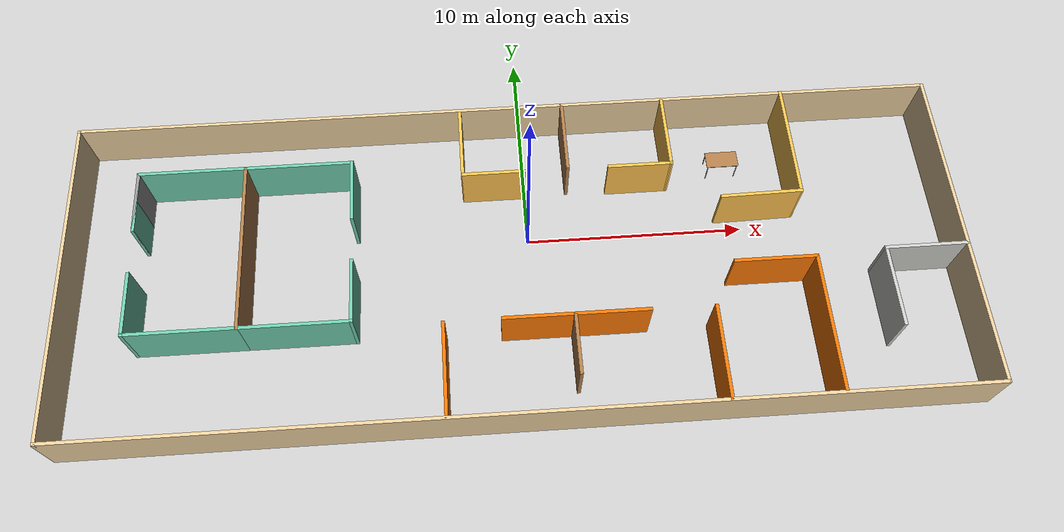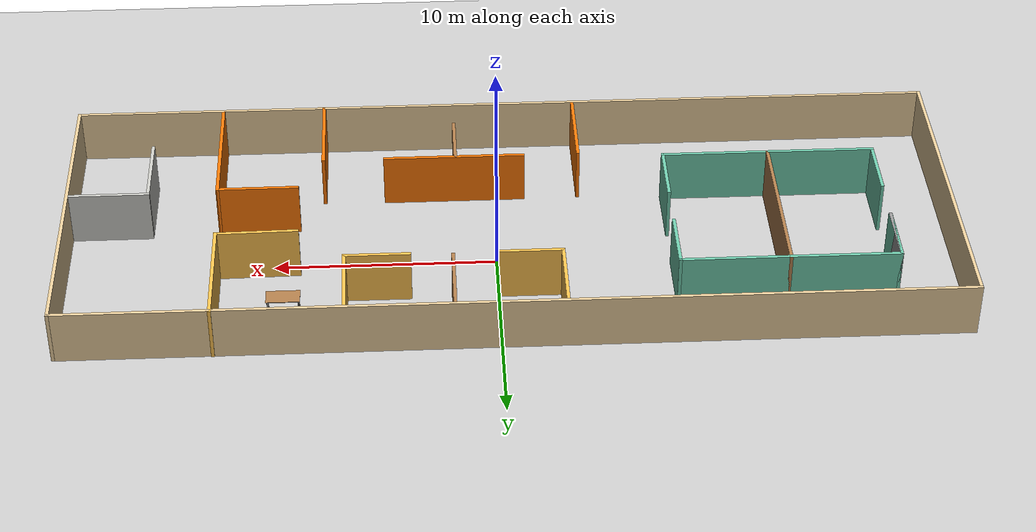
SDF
<sdf version="1.6">
 <world name="building">
  <model name="ground_plane">
   <static>1</static>
   <link name="link">
    <collision name="collision">
     <geometry><plane><normal>0 0 1</normal><size>100 100</size></plane></geometry>
     <surface><friction><ode><mu>100</mu><mu2>50</mu2></ode></friction></surface>
    </collision>
    <visual name="visual">
     <cast_shadows>0</cast_shadows>
     <geometry><plane><normal>0 0 1</normal><size>100 100</size></plane></geometry>
     <material>
      <script><uri>file://media/materials/scripts/gazebo.material</uri><name>Gazebo/Grey</name></script>
     </material>
    </visual>
   </link>
  </model>
  <model name="mybuilding">
   <pose>-0.6451 -1.51651 0 0 -0 0</pose>
   <link name="Wall_0">
    <collision name="Wall_0_Collision">
     <geometry><box><size>15 0.15 2.5</size></box></geometry>
     <pose>0 0 1.25 0 -0 0</pose>
    </collision>
    <visual name="Wall_0_Visual">
     <pose>0 0 1.25 0 -0 0</pose>
     <geometry><box><size>15 0.15 2.5</size></box></geometry>
     <material>
      <script><uri>file://media/materials/scripts/gazebo.material</uri><name>Gazebo/Grey</name></script>
      <ambient>0.921569 0.807843 0.615686 1</ambient>
     </material>
     <meta><layer>0</layer></meta>
    </visual>
    <pose>-19.925 -0.011199 0 0 0 -1.5708</pose>
   </link>
   <link name="Wall_1">
    <collision name="Wall_1_Collision">
     <geometry><box><size>40 0.15 2.5</size></box></geometry>
     <pose>0 0 1.25 0 -0 0</pose>
    </collision>
    <visual name="Wall_1_Visual">
     <pose>0 0 1.25 0 -0 0</pose>
     <geometry><box><size>40 0.15 2.5</size></box></geometry>
     <material>
      <script><uri>file://media/materials/scripts/gazebo.material</uri><name>Gazebo/Grey</name></script>
      <ambient>0.921569 0.807843 0.615686 1</ambient>
     </material>
     <meta><layer>0</layer></meta>
    </visual>
    <pose>0 -7.4362 0 0 -0 0</pose>
   </link>
   <link name="Wall_10">
    <collision name="Wall_10_Collision">
     <geometry><box><size>3 0.15 2.5</size></box></geometry>
     <pose>0 0 1.25 0 -0 0</pose>
    </collision>
    <visual name="Wall_10_Visual">
     <pose>0 0 1.25 0 -0 0</pose>
     <geometry><box><size>3 0.15 2.5</size></box></geometry>
     <material>
      <script><uri>file://media/materials/scripts/gazebo.material</uri><name>Gazebo/Grey</name></script>
      <ambient>0.435294 0.796078 0.67451 1</ambient>
     </material>
     <meta><layer>0</layer></meta>
    </visual>
    <pose>-16.9272 -1.5196 0 0 -0 1.5708</pose>
   </link>
   <link name="Wall_13">
    <collision name="Wall_13_Collision">
     <geometry><box><size>5 0.15 2.5</size></box></geometry>
     <pose>0 0 1.25 0 -0 0</pose>
    </collision>
    <visual name="Wall_13_Visual">
     <pose>0 0 1.25 0 -0 0</pose>
     <geometry><box><size>5 0.15 2.5</size></box></geometry>
     <material>
      <script><uri>file://media/materials/scripts/gazebo.material</uri><name>Gazebo/Grey</name></script>
      <ambient>0.435294 0.796078 0.67451 1</ambient>
     </material>
     <meta><layer>0</layer></meta>
    </visual>
    <pose>-9.65216 4.9054 0 0 -0 0</pose>
   </link>
   <link name="Wall_14">
    <collision name="Wall_14_Collision">
     <geometry><box><size>3 0.15 2.5</size></box></geometry>
     <pose>0 0 1.25 0 -0 0</pose>
    </collision>
    <visual name="Wall_14_Visual">
     <pose>0 0 1.25 0 -0 0</pose>
     <geometry><box><size>3 0.15 2.5</size></box></geometry>
     <material>
      <script><uri>file://media/materials/scripts/gazebo.material</uri><name>Gazebo/Grey</name></script>
      <ambient>0.435294 0.796078 0.67451 1</ambient>
     </material>
     <meta><layer>0</layer></meta>
    </visual>
    <pose>-7.22716 3.4804 0 0 0 -1.5708</pose>
   </link>
   <link name="Wall_16">
    <collision name="Wall_16_Collision">
     <geometry><box><size>5 0.15 2.5</size></box></geometry>
     <pose>0 0 1.25 0 -0 0</pose>
    </collision>
    <visual name="Wall_16_Visual">
     <pose>0 0 1.25 0 -0 0</pose>
     <geometry><box><size>5 0.15 2.5</size></box></geometry>
     <material>
      <script><uri>file://media/materials/scripts/gazebo.material</uri><name>Gazebo/Grey</name></script>
      <ambient>0.435294 0.796078 0.67451 1</ambient>
     </material>
     <meta><layer>0</layer></meta>
    </visual>
    <pose>-9.65216 -2.9446 0 0 -0 0</pose>
   </link>
   <link name="Wall_17">
    <collision name="Wall_17_Collision">
     <geometry><box><size>3 0.15 2.5</size></box></geometry>
     <pose>0 0 1.25 0 -0 0</pose>
    </collision>
    <visual name="Wall_17_Visual">
     <pose>0 0 1.25 0 -0 0</pose>
     <geometry><box><size>3 0.15 2.5</size></box></geometry>
     <material>
      <script><uri>file://media/materials/scripts/gazebo.material</uri><name>Gazebo/Grey</name></script>
      <ambient>0.435294 0.796078 0.67451 1</ambient>
     </material>
     <meta><layer>0</layer></meta>
    </visual>
    <pose>-7.22716 -1.5196 0 0 -0 1.5708</pose>
   </link>
   <link name="Wall_2">
    <collision name="Wall_2_Collision">
     <geometry><box><size>15 0.15 2.5</size></box></geometry>
     <pose>0 0 1.25 0 -0 0</pose>
    </collision>
    <visual name="Wall_2_Visual">
     <pose>0 0 1.25 0 -0 0</pose>
     <geometry><box><size>15 0.15 2.5</size></box></geometry>
     <material>
      <script><uri>file://media/materials/scripts/gazebo.material</uri><name>Gazebo/Grey</name></script>
      <ambient>0.921569 0.807843 0.615686 1</ambient>
     </material>
     <meta><layer>0</layer></meta>
    </visual>
    <pose>19.925 -0.011199 0 0 -0 1.5708</pose>
   </link>
   <link name="Wall_21">
    <collision name="Wall_21_Collision">
     <geometry><box><size>3.5 0.15 2.5</size></box></geometry>
     <pose>0 0 1.25 0 -0 0</pose>
    </collision>
    <visual name="Wall_21_Visual">
     <pose>0 0 1.25 0 -0 0</pose>
     <geometry><box><size>3.5 0.15 2.5</size></box></geometry>
     <material>
      <script><uri>file://media/materials/scripts/gazebo.material</uri><name>Gazebo/Grey</name></script>
      <ambient>1 0.764706 0.305882 1</ambient>
     </material>
     <meta><layer>0</layer></meta>
    </visual>
    <pose>-2.18267 5.60152 0 0 -0 1.5708</pose>
   </link>
   <link name="Wall_23">
    <collision name="Wall_23_Collision">
     <geometry><box><size>3 0.15 2.5</size></box></geometry>
     <pose>0 0 1.25 0 -0 0</pose>
    </collision>
    <visual name="Wall_23_Visual">
     <pose>0 0 1.25 0 -0 0</pose>
     <geometry><box><size>3 0.15 2.5</size></box></geometry>
     <material>
      <script><uri>file://media/materials/scripts/gazebo.material</uri><name>Gazebo/Grey</name></script>
      <ambient>1 0.764706 0.305882 1</ambient>
     </material>
     <meta><layer>0</layer></meta>
    </visual>
    <pose>-0.757668 3.92652 0 0 -0 0</pose>
   </link>
   <link name="Wall_27">
    <collision name="Wall_27_Collision">
     <geometry><box><size>3.5 0.15 2.5</size></box></geometry>
     <pose>0 0 1.25 0 -0 0</pose>
    </collision>
    <visual name="Wall_27_Visual">
     <pose>0 0 1.25 0 -0 0</pose>
     <geometry><box><size>3.5 0.15 2.5</size></box></geometry>
     <material>
      <script><uri>file://media/materials/scripts/gazebo.material</uri><name>Gazebo/Wood</name></script>
      <ambient>1 1 1 1</ambient>
     </material>
     <meta><layer>0</layer></meta>
    </visual>
    <pose>2.64477 5.70807 0 0 -0 1.5708</pose>
   </link>
   <link name="Wall_3">
    <collision name="Wall_3_Collision">
     <geometry><box><size>40 0.15 2.5</size></box></geometry>
     <pose>0 0 1.25 0 -0 0</pose>
    </collision>
    <visual name="Wall_3_Visual">
     <pose>0 0 1.25 0 -0 0</pose>
     <geometry><box><size>40 0.15 2.5</size></box></geometry>
     <material>
      <script><uri>file://media/materials/scripts/gazebo.material</uri><name>Gazebo/Grey</name></script>
      <ambient>0.921569 0.807843 0.615686 1</ambient>
     </material>
     <meta><layer>0</layer></meta>
    </visual>
    <pose>0 7.4138 0 0 -0 3.14159</pose>
   </link>
   <link name="Wall_30">
    <collision name="Wall_30_Collision">
     <geometry><box><size>3 0.15 2.5</size></box></geometry>
     <pose>0 0 1.25 0 -0 0</pose>
    </collision>
    <visual name="Wall_30_Visual">
     <pose>0 0 1.25 0 -0 0</pose>
     <geometry><box><size>3 0.15 2.5</size></box></geometry>
     <material>
      <script><uri>file://media/materials/scripts/gazebo.material</uri><name>Gazebo/Grey</name></script>
      <ambient>1 0.764706 0.305882 1</ambient>
     </material>
     <meta><layer>0</layer></meta>
    </visual>
    <pose>5.98499 3.91607 0 0 -0 0</pose>
   </link>
   <link name="Wall_31">
    <collision name="Wall_31_Collision">
     <geometry><box><size>3.5799 0.15 2.5</size></box></geometry>
     <pose>0 0 1.25 0 -0 0</pose>
    </collision>
    <visual name="Wall_31_Visual">
     <pose>0 0 1.25 0 -0 0</pose>
     <geometry><box><size>3.5799 0.15 2.5</size></box></geometry>
     <material>
      <script><uri>file://media/materials/scripts/gazebo.material</uri><name>Gazebo/Grey</name></script>
      <ambient>1 0.764706 0.305882 1</ambient>
     </material>
     <meta><layer>0</layer></meta>
    </visual>
    <pose>7.39669 5.63097 0 0 -0 1.57855</pose>
   </link>
   <link name="Wall_33">
    <collision name="Wall_33_Collision">
     <geometry><box><size>4.25 0.15 2.5</size></box></geometry>
     <pose>0 0 1.25 0 -0 0</pose>
    </collision>
    <visual name="Wall_33_Visual">
     <pose>0 0 1.25 0 -0 0</pose>
     <geometry><box><size>4.25 0.15 2.5</size></box></geometry>
     <material>
      <script><uri>file://media/materials/scripts/gazebo.material</uri><name>Gazebo/Grey</name></script>
      <ambient>0.996078 0.47451 0.0196078 1</ambient>
     </material>
     <meta><layer>0</layer></meta>
    </visual>
    <pose>-3.32789 -5.33009 0 0 0 -1.5708</pose>
   </link>
   <link name="Wall_35">
    <collision name="Wall_35_Collision">
     <geometry><box><size>6.5 0.15 2.5</size></box></geometry>
     <pose>0 0 1.25 0 -0 0</pose>
    </collision>
    <visual name="Wall_35_Visual">
     <pose>0 0 1.25 0 -0 0</pose>
     <geometry><box><size>6.5 0.15 2.5</size></box></geometry>
     <material>
      <script><uri>file://media/materials/scripts/gazebo.material</uri><name>Gazebo/Grey</name></script>
      <ambient>0.996078 0.47451 0.0196078 1</ambient>
     </material>
     <meta><layer>0</layer></meta>
    </visual>
    <pose>2.39581 -3.23963 0 0 -0 0</pose>
   </link>
   <link name="Wall_37">
    <collision name="Wall_37_Collision">
     <geometry><box><size>4.25 0.15 2.5</size></box></geometry>
     <pose>0 0 1.25 0 -0 0</pose>
    </collision>
    <visual name="Wall_37_Visual">
     <pose>0 0 1.25 0 -0 0</pose>
     <geometry><box><size>4.25 0.15 2.5</size></box></geometry>
     <material>
      <script><uri>file://media/materials/scripts/gazebo.material</uri><name>Gazebo/Grey</name></script>
      <ambient>0.996078 0.47451 0.0196078 1</ambient>
     </material>
     <meta><layer>0</layer></meta>
    </visual>
    <pose>8.40423 -5.33736 0 0 0 -1.5708</pose>
   </link>
   <link name="Wall_39">
    <collision name="Wall_39_Collision">
     <geometry><box><size>2.75 0.15 2.5</size></box></geometry>
     <pose>0 0 1.25 0 -0 0</pose>
    </collision>
    <visual name="Wall_39_Visual">
     <pose>0 0 1.25 0 -0 0</pose>
     <geometry><box><size>2.75 0.15 2.5</size></box></geometry>
     <material>
      <script><uri>file://media/materials/scripts/gazebo.material</uri><name>Gazebo/Wood</name></script>
      <ambient>1 1 1 1</ambient>
     </material>
     <meta><layer>0</layer></meta>
    </visual>
    <pose>2.33589 -4.58009 0 0 0 -1.5708</pose>
   </link>
   <link name="Wall_41">
    <collision name="Wall_41_Collision">
     <geometry><box><size>3.75062 0.15 2.5</size></box></geometry>
     <pose>0 0 1.25 0 -0 0</pose>
    </collision>
    <visual name="Wall_41_Visual">
     <pose>0 0 1.25 0 -0 0</pose>
     <geometry><box><size>3.75062 0.15 2.5</size></box></geometry>
     <material>
      <script><uri>file://media/materials/scripts/gazebo.material</uri><name>Gazebo/Grey</name></script>
      <ambient>1 0.764706 0.305882 1</ambient>
     </material>
     <meta><layer>0</layer></meta>
    </visual>
    <pose>11.2965 2.05289 0 0 -0 0.0185</pose>
   </link>
   <link name="Wall_42">
    <collision name="Wall_42_Collision">
     <geometry><box><size>5.5 0.15 2.5</size></box></geometry>
     <pose>0 0 1.25 0 -0 0</pose>
    </collision>
    <visual name="Wall_42_Visual">
     <pose>0 0 1.25 0 -0 0</pose>
     <geometry><box><size>5.5 0.15 2.5</size></box></geometry>
     <material>
      <script><uri>file://media/materials/scripts/gazebo.material</uri><name>Gazebo/Grey</name></script>
      <ambient>1 0.764706 0.305882 1</ambient>
     </material>
     <meta><layer>0</layer></meta>
    </visual>
    <pose>13.0965 4.7612 0 0 -0 1.5708</pose>
   </link>
   <link name="Wall_44">
    <collision name="Wall_44_Collision">
     <geometry><box><size>3.75 0.15 2.5</size></box></geometry>
     <pose>0 0 1.25 0 -0 0</pose>
    </collision>
    <visual name="Wall_44_Visual">
     <pose>0 0 1.25 0 -0 0</pose>
     <geometry><box><size>3.75 0.15 2.5</size></box></geometry>
     <material>
      <script><uri>file://media/materials/scripts/gazebo.material</uri><name>Gazebo/Grey</name></script>
      <ambient>0.996078 0.47451 0.0196078 1</ambient>
     </material>
     <meta><layer>0</layer></meta>
    </visual>
    <pose>11.3579 -1.21421 0 0 -0 0</pose>
   </link>
   <link name="Wall_45">
    <collision name="Wall_45_Collision">
     <geometry><box><size>6.25 0.15 2.5</size></box></geometry>
     <pose>0 0 1.25 0 -0 0</pose>
    </collision>
    <visual name="Wall_45_Visual">
     <pose>0 0 1.25 0 -0 0</pose>
     <geometry><box><size>6.25 0.15 2.5</size></box></geometry>
     <material>
      <script><uri>file://media/materials/scripts/gazebo.material</uri><name>Gazebo/Grey</name></script>
      <ambient>0.996078 0.47451 0.0196078 1</ambient>
     </material>
     <meta><layer>0</layer></meta>
    </visual>
    <pose>13.1579 -4.26421 0 0 0 -1.5708</pose>
   </link>
   <link name="Wall_47">
    <collision name="Wall_47_Collision">
     <geometry><box><size>3.75 0.15 2.5</size></box></geometry>
     <pose>0 0 1.25 0 -0 0</pose>
    </collision>
    <visual name="Wall_47_Visual">
     <pose>0 0 1.25 0 -0 0</pose>
     <geometry><box><size>3.75 0.15 2.5</size></box></geometry>
     <material>
      <script><uri>file://media/materials/scripts/gazebo.material</uri><name>Gazebo/CeilingTiled</name></script>
      <ambient>1 1 1 1</ambient>
     </material>
     <meta><layer>0</layer></meta>
    </visual>
    <pose>18.0741 -1.01193 0 0 -0 3.14159</pose>
   </link>
   <link name="Wall_48">
    <collision name="Wall_48_Collision">
     <geometry><box><size>3.75 0.15 2.5</size></box></geometry>
     <pose>0 0 1.25 0 -0 0</pose>
    </collision>
    <visual name="Wall_48_Visual">
     <pose>0 0 1.25 0 -0 0</pose>
     <geometry><box><size>3.75 0.15 2.5</size></box></geometry>
     <material>
      <script><uri>file://media/materials/scripts/gazebo.material</uri><name>Gazebo/CeilingTiled</name></script>
      <ambient>1 1 1 1</ambient>
     </material>
     <meta><layer>0</layer></meta>
    </visual>
    <pose>16.2741 -2.81193 0 0 0 -1.5708</pose>
   </link>
   <link name="Wall_5">
    <collision name="Wall_5_Collision">
     <geometry><box><size>3 0.15 2.5</size></box></geometry>
     <pose>0 0 1.25 0 -0 0</pose>
    </collision>
    <visual name="Wall_5_Visual">
     <pose>0 0 1.25 0 -0 0</pose>
     <geometry><box><size>3 0.15 2.5</size></box></geometry>
     <material>
      <script><uri>file://media/materials/scripts/gazebo.material</uri><name>Gazebo/Grey</name></script>
      <ambient>1 1 1 1</ambient>
     </material>
     <meta><layer>0</layer></meta>
    </visual>
    <pose>-16.9272 3.4804 0 0 0 -1.5708</pose>
   </link>
   <link name="Wall_6">
    <collision name="Wall_6_Collision">
     <geometry><box><size>3 0.15 2.5</size></box></geometry>
     <pose>0 0 1.25 0 -0 0</pose>
    </collision>
    <visual name="Wall_6_Visual">
     <pose>0 0 1.25 0 -0 0</pose>
     <geometry><box><size>3 0.15 2.5</size></box></geometry>
     <material>
      <script><uri>file://media/materials/scripts/gazebo.material</uri><name>Gazebo/Grey</name></script>
      <ambient>0.435294 0.796078 0.67451 1</ambient>
     </material>
     <meta><layer>0</layer></meta>
    </visual>
    <pose>-16.9272 3.4804 0 0 -0 1.5708</pose>
   </link>
   <link name="Wall_7">
    <collision name="Wall_7_Collision">
     <geometry><box><size>5 0.15 2.5</size></box></geometry>
     <pose>0 0 1.25 0 -0 0</pose>
    </collision>
    <visual name="Wall_7_Visual">
     <pose>0 0 1.25 0 -0 0</pose>
     <geometry><box><size>5 0.15 2.5</size></box></geometry>
     <material>
      <script><uri>file://media/materials/scripts/gazebo.material</uri><name>Gazebo/Grey</name></script>
      <ambient>0.435294 0.796078 0.67451 1</ambient>
     </material>
     <meta><layer>0</layer></meta>
    </visual>
    <pose>-14.5022 4.9054 0 0 -0 0</pose>
   </link>
   <link name="Wall_8">
    <collision name="Wall_8_Collision">
     <geometry><box><size>8 0.15 2.5</size></box></geometry>
     <pose>0 0 1.25 0 -0 0</pose>
    </collision>
    <visual name="Wall_8_Visual">
     <pose>0 0 1.25 0 -0 0</pose>
     <geometry><box><size>8 0.15 2.5</size></box></geometry>
     <material>
      <script><uri>file://media/materials/scripts/gazebo.material</uri><name>Gazebo/Wood</name></script>
      <ambient>1 1 1 1</ambient>
     </material>
     <meta><layer>0</layer></meta>
    </visual>
    <pose>-12.0772 0.980403 0 0 0 -1.5708</pose>
   </link>
   <link name="Wall_9">
    <collision name="Wall_9_Collision">
     <geometry><box><size>5 0.15 2.5</size></box></geometry>
     <pose>0 0 1.25 0 -0 0</pose>
    </collision>
    <visual name="Wall_9_Visual">
     <pose>0 0 1.25 0 -0 0</pose>
     <geometry><box><size>5 0.15 2.5</size></box></geometry>
     <material>
      <script><uri>file://media/materials/scripts/gazebo.material</uri><name>Gazebo/Grey</name></script>
      <ambient>0.435294 0.796078 0.67451 1</ambient>
     </material>
     <meta><layer>0</layer></meta>
    </visual>
    <pose>-14.5022 -2.9446 0 0 -0 3.14159</pose>
   </link>
   <static>1</static>
  </model>
  <model name="table_1">
   <static>1</static>
   <link name="link">
    <collision name="surface">
     <pose>0 0 1 0 -0 0</pose>
     <geometry><box><size>1.5 0.8 0.03</size></box></geometry>
     <surface><friction><ode><mu>0.6</mu><mu2>0.6</mu2></ode></friction></surface>
    </collision>
    <visual name="visual1">
     <pose>0 0 1 0 -0 0</pose>
     <geometry><box><size>1.5 0.8 0.03</size></box></geometry>
     <material>
      <script><uri>file://media/materials/scripts/gazebo.material</uri><name>Gazebo/Wood</name></script>
     </material>
    </visual>
    <collision name="front_left_leg">
     <pose>0.68 0.38 0.5 0 -0 0</pose>
     <geometry><cylinder><radius>0.02</radius><length>1</length></cylinder></geometry>
    </collision>
    <visual name="front_left_leg">
     <pose>0.68 0.38 0.5 0 -0 0</pose>
     <geometry><cylinder><radius>0.02</radius><length>1</length></cylinder></geometry>
     <material>
      <script><uri>file://media/materials/scripts/gazebo.material</uri><name>Gazebo/Grey</name></script>
     </material>
    </visual>
    <collision name="front_right_leg">
     <pose>0.68 -0.38 0.5 0 -0 0</pose>
     <geometry><cylinder><radius>0.02</radius><length>1</length></cylinder></geometry>
    </collision>
    <visual name="front_right_leg">
     <pose>0.68 -0.38 0.5 0 -0 0</pose>
     <geometry><cylinder><radius>0.02</radius><length>1</length></cylinder></geometry>
     <material>
      <script><uri>file://media/materials/scripts/gazebo.material</uri><name>Gazebo/Grey</name></script>
     </material>
    </visual>
    <collision name="back_right_leg">
     <pose>-0.68 -0.38 0.5 0 -0 0</pose>
     <geometry><cylinder><radius>0.02</radius><length>1</length></cylinder></geometry>
    </collision>
    <visual name="back_right_leg">
     <pose>-0.68 -0.38 0.5 0 -0 0</pose>
     <geometry><cylinder><radius>0.02</radius><length>1</length></cylinder></geometry>
     <material>
      <script><uri>file://media/materials/scripts/gazebo.material</uri><name>Gazebo/Grey</name></script>
     </material>
    </visual>
    <collision name="back_left_leg">
     <pose>-0.68 0.38 0.5 0 -0 0</pose>
     <geometry><cylinder><radius>0.02</radius><length>1</length></cylinder></geometry>
    </collision>
    <visual name="back_left_leg">
     <pose>-0.68 0.38 0.5 0 -0 0</pose>
     <geometry><cylinder><radius>0.02</radius><length>1</length></cylinder></geometry>
     <material>
      <script><uri>file://media/materials/scripts/gazebo.material</uri><name>Gazebo/Grey</name></script>
     </material>
    </visual>
   </link>
   <pose>9.47884 3.28392 0 0 -0 0</pose>
  </model>
 </world>
</sdf>
